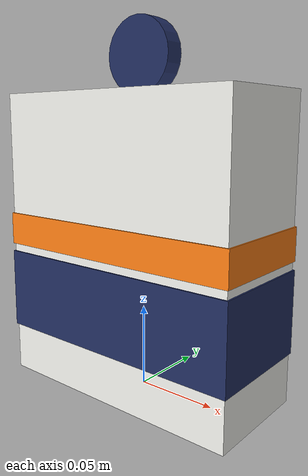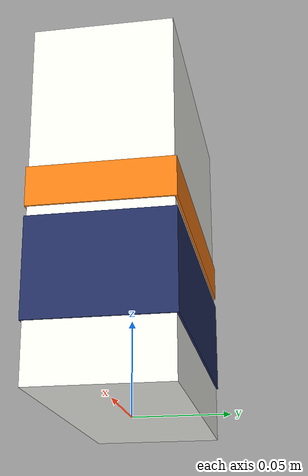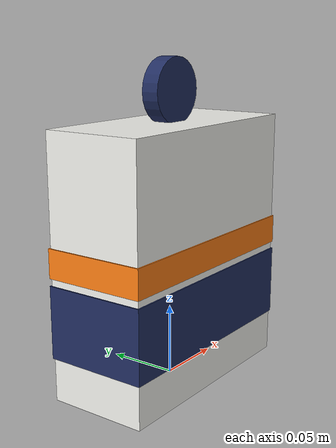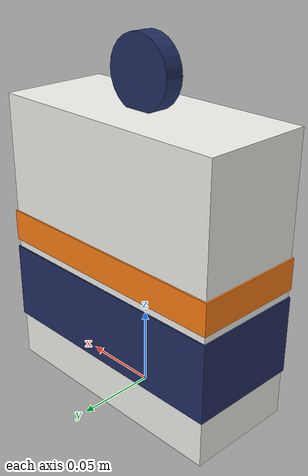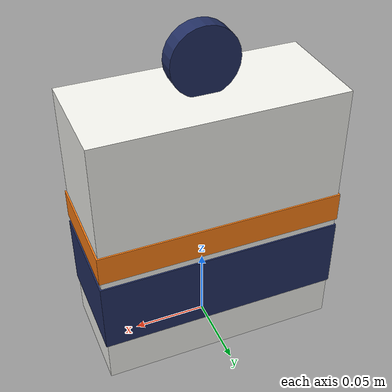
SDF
<?xml version="1.0" encoding="UTF-8"?>
<sdf version="1.9">
  <model name="cargo_box">
    <static>true</static>
    <link name="link">
      <!-- white card body (16 x 7 x 18 cm), base at z=0 -->
      <visual name="body">
        <pose>0 0 0.09 0 0 0</pose>
        <geometry>
          <box><size>0.16 0.07 0.18</size></box>
        </geometry>
        <material>
          <ambient>0.92 0.92 0.90 1</ambient>
          <diffuse>0.96 0.96 0.94 1</diffuse>
          <specular>0.05 0.05 0.05 1</specular>
        </material>
      </visual>
      <!-- navy print band (the heart-box artwork) -->
      <visual name="print_band">
        <pose>0 0 0.055 0 0 0</pose>
        <geometry>
          <box><size>0.162 0.072 0.05</size></box>
        </geometry>
        <material>
          <ambient>0.10 0.14 0.30 1</ambient>
          <diffuse>0.13 0.18 0.38 1</diffuse>
        </material>
      </visual>
      <!-- orange accent stripe -->
      <visual name="accent_stripe">
        <pose>0 0 0.095 0 0 0</pose>
        <geometry>
          <box><size>0.162 0.072 0.02</size></box>
        </geometry>
        <material>
          <ambient>0.85 0.40 0.05 1</ambient>
          <diffuse>1.00 0.50 0.08 1</diffuse>
        </material>
      </visual>
      <!-- handle loop over the top -->
      <visual name="handle">
        <pose>0 0 0.20 1.5708 0 0</pose>
        <geometry>
          <cylinder><radius>0.022</radius><length>0.012</length></cylinder>
        </geometry>
        <material>
          <ambient>0.10 0.14 0.30 1</ambient>
          <diffuse>0.13 0.18 0.38 1</diffuse>
        </material>
      </visual>
      <!-- single collision = the card box itself -->
      <collision name="collision">
        <pose>0 0 0.09 0 0 0</pose>
        <geometry>
          <box><size>0.16 0.07 0.18</size></box>
        </geometry>
      </collision>
    </link>
  </model>
</sdf>
